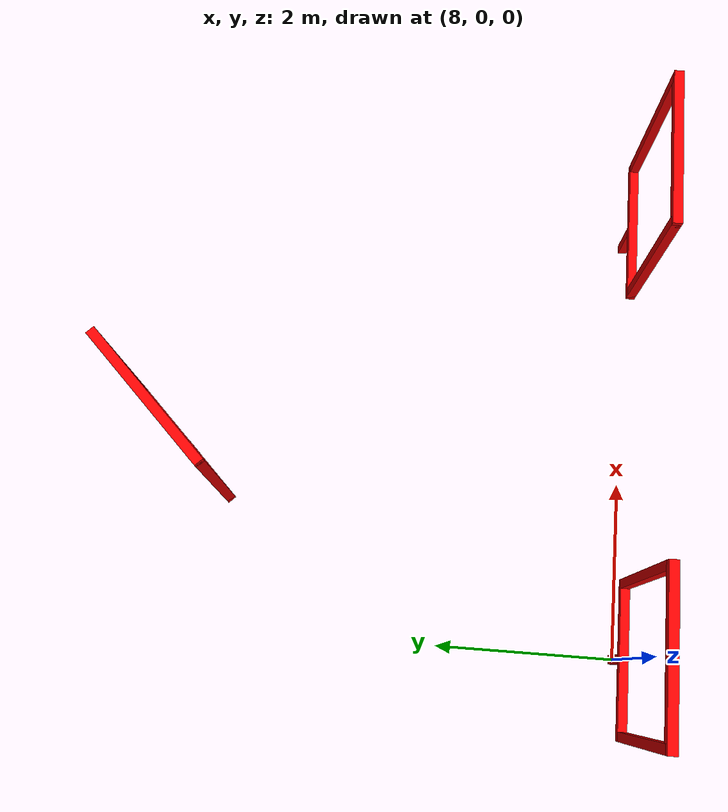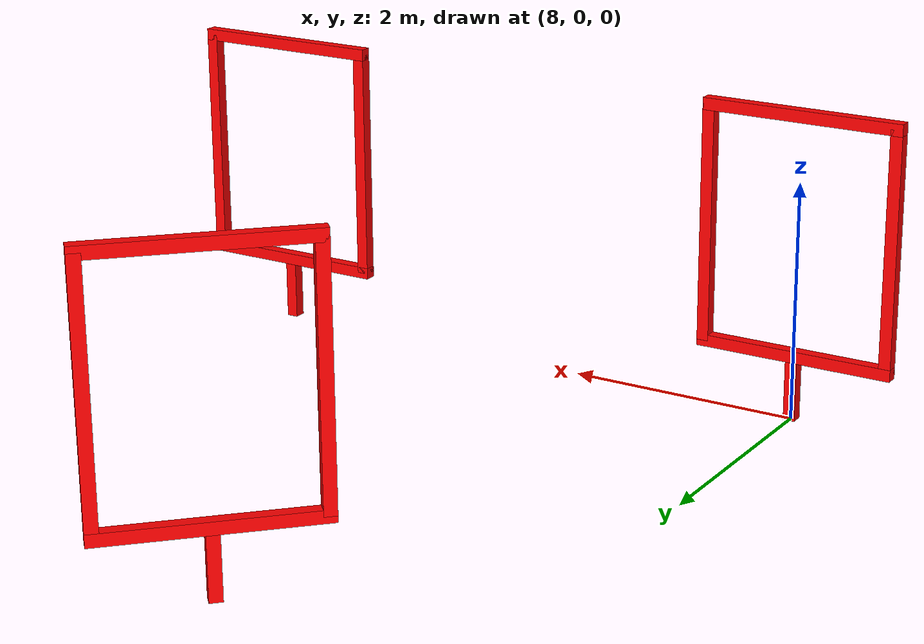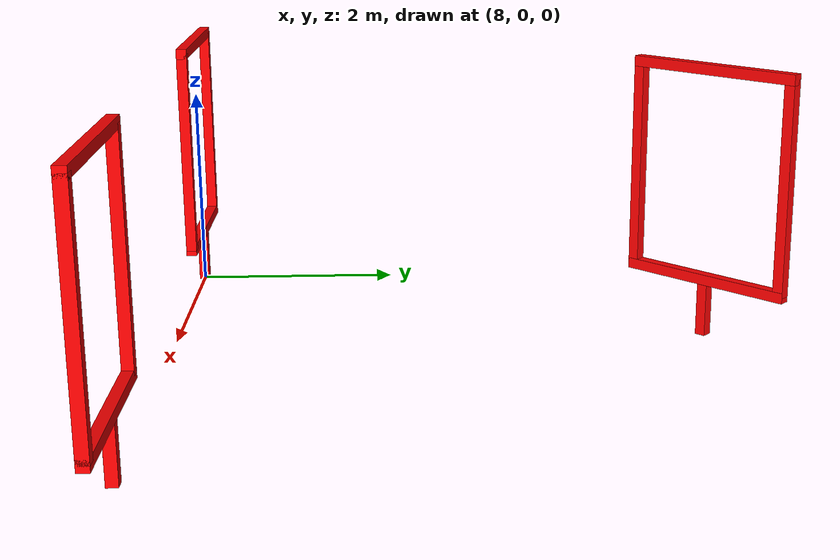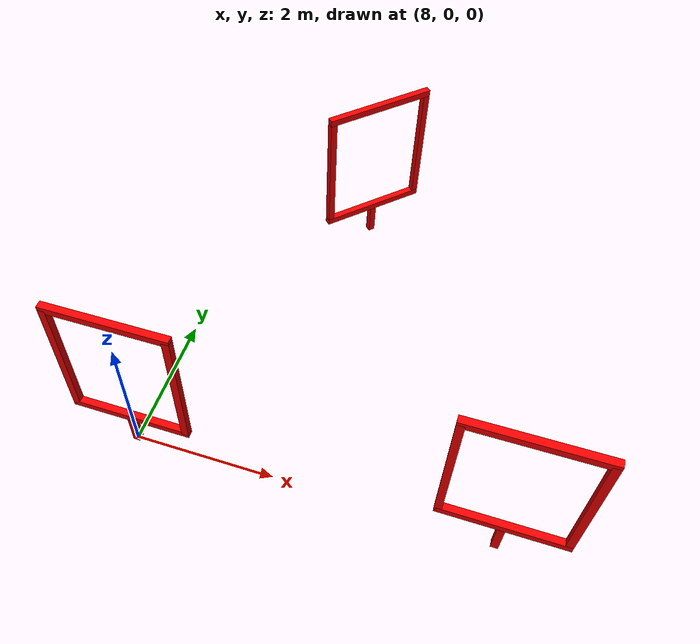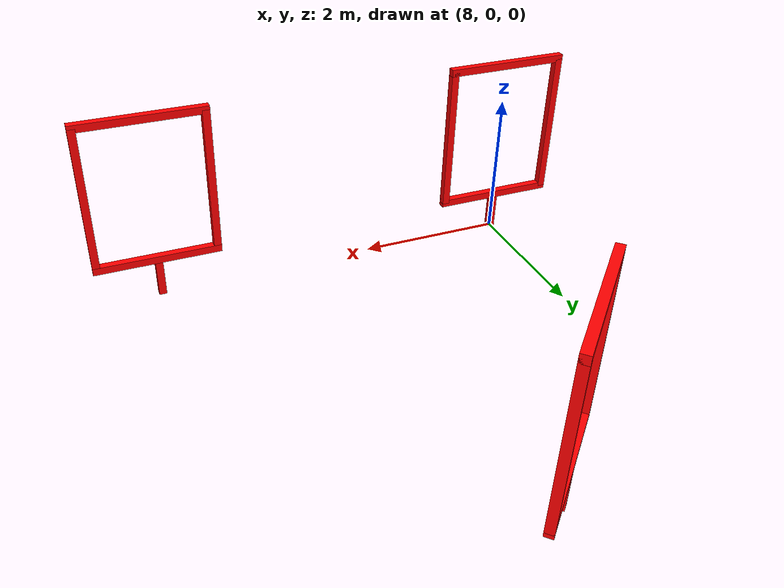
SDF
<?xml version="1.0" encoding="UTF-8"?>
<sdf version="1.9">
  <world name="puertas3">
    <physics type="ode">...</physics>
    <gravity>0 0 -9.8</gravity>
    <magnetic_field>6e-06 2.3e-05 -4.2e-05</magnetic_field>
    <atmosphere type="adiabatic"/>
    <scene>...</scene>
    <model name="ground_plane">...</model>
    <light name="sunUTC" type="directional">...</light>
    <spherical_coordinates>...</spherical_coordinates>

    <include>
      <uri>model://puerta_roja_grande</uri> <name>MiPuerta1</name> <pose>8 0 0 0 0 0</pose> </include>

    <include>
      <uri>model://puerta_roja_grande</uri>
      <name>MiPuerta2</name>
      <pose>13 0 0 0 0 0</pose> </include>

    <include>
      <uri>model://puerta_roja_grande</uri>
      <name>MiPuerta3_Rotada</name>
      <pose>10 5 0 0 0 0.7854</pose> </include>

  </world>
</sdf>

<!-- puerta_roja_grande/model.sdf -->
<sdf version="1.9">
  <model name="puerta_roja_grande">  <static>true</static>
    <link name="soporte"> <pose>0 0 0.25 0 0 0</pose>
      <collision name="col_soporte"><geometry><box><size>0.1 0.1 0.5</size></box></geometry></collision>
      <visual name="vis_soporte"><geometry><box><size>0.1 0.1 0.5</size></box></geometry><material><ambient>1 0 0 1</ambient><diffuse>1 0 0 1</diffuse></material></visual>
    </link>
    <link name="barra_inferior">
      <pose>0 0 0.55 0 0 0</pose>
      <collision name="col_inferior"><geometry><box><size>1.7 0.1 0.1</size></box></geometry></collision>
      <visual name="vis_inferior"><geometry><box><size>1.7 0.1 0.1</size></box></geometry><material><ambient>1 0 0 1</ambient><diffuse>1 0 0 1</diffuse></material></visual>
    </link>
    <link name="barra_superior">
      <pose>0 0 2.55 0 0 0</pose>
      <collision name="col_superior"><geometry><box><size>1.7 0.1 0.1</size></box></geometry></collision>
      <visual name="vis_superior"><geometry><box><size>1.7 0.1 0.1</size></box></geometry><material><ambient>1 0 0 1</ambient><diffuse>1 0 0 1</diffuse></material></visual>
    </link>
    <link name="barra_izquierda">
      <pose>-0.8 0 1.55 0 0 0</pose>
      <collision name="col_izquierda"><geometry><box><size>0.1 0.1 2.0</size></box></geometry></collision>
      <visual name="vis_izquierda"><geometry><box><size>0.1 0.1 2.0</size></box></geometry><material><ambient>1 0 0 1</ambient><diffuse>1 0 0 1</diffuse></material></visual>
    </link>
    <link name="barra_derecha">
      <pose>0.8 0 1.55 0 0 0</pose>
      <collision name="col_derecha"><geometry><box><size>0.1 0.1 2.0</size></box></geometry></collision>
      <visual name="vis_derecha"><geometry><box><size>0.1 0.1 2.0</size></box></geometry><material><ambient>1 0 0 1</ambient><diffuse>1 0 0 1</diffuse></material></visual>
    </link>
    <joint name="joint_soporte_inferior" type="fixed"><parent>soporte</parent><child>barra_inferior</child></joint>
    <joint name="joint_inferior_izquierda" type="fixed"><parent>barra_inferior</parent><child>barra_izquierda</child></joint>
    <joint name="joint_inferior_derecha" type="fixed"><parent>barra_inferior</parent><child>barra_derecha</child></joint>
    <joint name="joint_inferior_superior" type="fixed"><parent>barra_inferior</parent><child>barra_superior</child></joint>
    </model>
</sdf>
